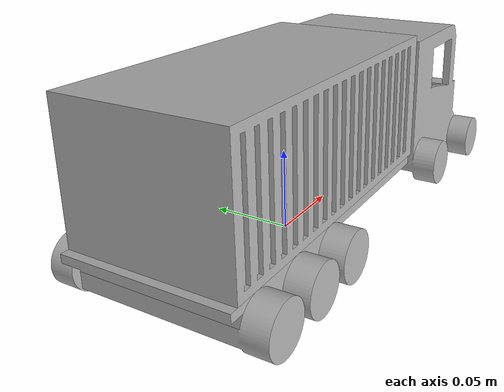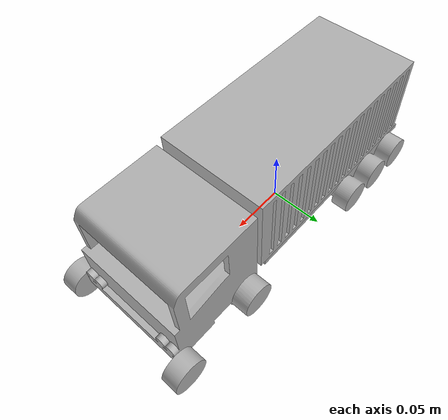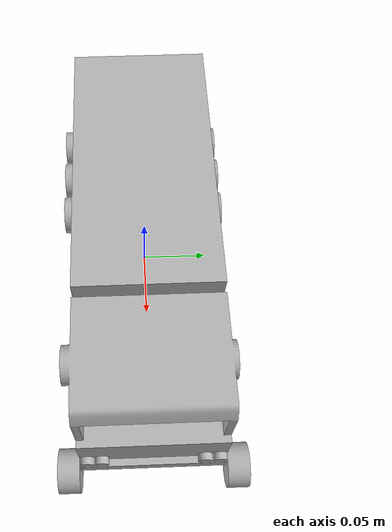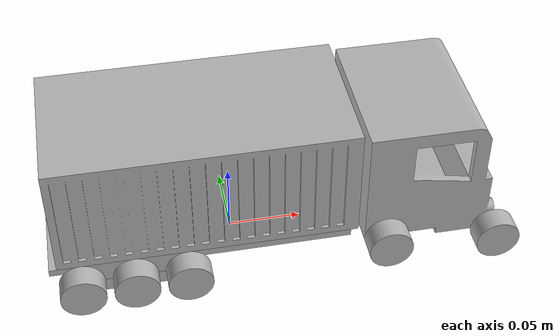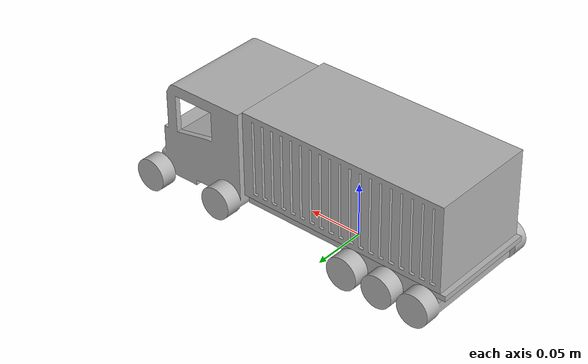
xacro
<?xml version="1.0" ?>
<robot name="container_car" xmlns:xacro="http://www.ros.org/wiki/xacro">

<xacro:include filename="$(find container_car_description)/urdf/materials.xacro" />
<xacro:include filename="$(find container_car_description)/urdf/container_car.trans" />
<xacro:include filename="$(find container_car_description)/urdf/container_car.gazebo" />
<link name="base_link">
  <inertial>
    <origin xyz="0.05908155549740775 -4.029122666512787e-10 0.04004034121485782" rpy="0 0 0"/>
    <mass value="3.868389315645549"/>
    <inertia ixx="0.006846" iyy="0.034945" izz="0.036193" ixy="0.0" iyz="0.0" ixz="-0.003702"/>
  </inertial>
  <visual>
    <origin xyz="0 0 0" rpy="0 0 0"/>
    <geometry>
      <mesh filename="package://container_car_description/meshes/base_link.stl" scale="0.001 0.001 0.001"/>
    </geometry>
    <material name="silver"/>
  </visual>
  <collision>
    <origin xyz="0 0 0" rpy="0 0 0"/>
    <geometry>
      <mesh filename="package://container_car_description/meshes/base_link.stl" scale="0.001 0.001 0.001"/>
    </geometry>
  </collision>
</link>

<link name="container_1">
  <inertial>
    <origin xyz="5.305650809107193e-05 0.0 0.04000000000000001" rpy="0 0 0"/>
    <mass value="12.298987499999999"/>
    <inertia ixx="0.016438" iyy="0.047674" izz="0.050928" ixy="0.0" iyz="0.0" ixz="-0.0"/>
  </inertial>
  <visual>
    <origin xyz="0.02 -0.0 -0.03" rpy="0 0 0"/>
    <geometry>
      <mesh filename="package://container_car_description/meshes/container_1.stl" scale="0.001 0.001 0.001"/>
    </geometry>
    <material name="silver"/>
  </visual>
  <collision>
    <origin xyz="0.02 -0.0 -0.03" rpy="0 0 0"/>
    <geometry>
      <mesh filename="package://container_car_description/meshes/container_1.stl" scale="0.001 0.001 0.001"/>
    </geometry>
  </collision>
</link>

<link name="wheel_1">
  <inertial>
    <origin xyz="0.0010701514169682014 0.0 -0.0028596948030623487" rpy="0 0 0"/>
    <mass value="1.1666454221962672"/>
    <inertia ixx="0.002257" iyy="0.00088" izz="0.003056" ixy="-0.0" iyz="0.0" ixz="-4e-06"/>
  </inertial>
  <visual>
    <origin xyz="0.0725 -0.0 -0.015" rpy="0 0 0"/>
    <geometry>
      <mesh filename="package://container_car_description/meshes/wheel_1.stl" scale="0.001 0.001 0.001"/>
    </geometry>
    <material name="silver"/>
  </visual>
  <collision>
    <origin xyz="0.0725 -0.0 -0.015" rpy="0 0 0"/>
    <geometry>
      <mesh filename="package://container_car_description/meshes/wheel_1.stl" scale="0.001 0.001 0.001"/>
    </geometry>
  </collision>
</link>

<link name="left_wheel_1">
  <inertial>
    <origin xyz="5.551115123125783e-17 0.007499999999999986 -3.469446951953614e-18" rpy="0 0 0"/>
    <mass value="0.08323257036604456"/>
    <inertia ixx="6e-06" iyy="9e-06" izz="6e-06" ixy="-0.0" iyz="0.0" ixz="-0.0"/>
  </inertial>
  <visual>
    <origin xyz="-0.175 -0.05 -0.015" rpy="0 0 0"/>
    <geometry>
      <mesh filename="package://container_car_description/meshes/left_wheel_1.stl" scale="0.001 0.001 0.001"/>
    </geometry>
    <material name="silver"/>
  </visual>
  <collision>
    <origin xyz="-0.175 -0.05 -0.015" rpy="0 0 0"/>
    <geometry>
      <mesh filename="package://container_car_description/meshes/left_wheel_1.stl" scale="0.001 0.001 0.001"/>
    </geometry>
  </collision>
</link>

<link name="right_wheel_1">
  <inertial>
    <origin xyz="5.551115123125783e-17 -0.007500000000000007 5.204170427930421e-18" rpy="0 0 0"/>
    <mass value="0.08323257036604456"/>
    <inertia ixx="6e-06" iyy="9e-06" izz="6e-06" ixy="-0.0" iyz="-0.0" ixz="0.0"/>
  </inertial>
  <visual>
    <origin xyz="-0.175 0.05 -0.015" rpy="0 0 0"/>
    <geometry>
      <mesh filename="package://container_car_description/meshes/right_wheel_1.stl" scale="0.001 0.001 0.001"/>
    </geometry>
    <material name="silver"/>
  </visual>
  <collision>
    <origin xyz="-0.175 0.05 -0.015" rpy="0 0 0"/>
    <geometry>
      <mesh filename="package://container_car_description/meshes/right_wheel_1.stl" scale="0.001 0.001 0.001"/>
    </geometry>
  </collision>
</link>

<joint name="Rigid 12" type="fixed">
  <origin xyz="-0.02 0.0 0.03" rpy="0 0 0"/>
  <parent link="base_link"/>
  <child link="container_1"/>
</joint>

<joint name="Rigid 13" type="fixed">
  <origin xyz="-0.0725 0.0 0.015" rpy="0 0 0"/>
  <parent link="base_link"/>
  <child link="wheel_1"/>
</joint>

<joint name="Revolute 14" type="continuous">
  <origin xyz="0.175 0.05 0.015" rpy="0 0 0"/>
  <parent link="base_link"/>
  <child link="left_wheel_1"/>
  <axis xyz="0.0 1.0 0.0"/>
</joint>

<joint name="Revolute 15" type="continuous">
  <origin xyz="0.175 -0.05 0.015" rpy="0 0 0"/>
  <parent link="base_link"/>
  <child link="right_wheel_1"/>
  <axis xyz="0.0 1.0 0.0"/>
</joint>

</robot>

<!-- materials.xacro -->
<robot name="container_car" xmlns:xacro="http://www.ros.org/wiki/xacro" >

<material name="silver">
  <color rgba="0.700 0.700 0.700 1.000"/>
</material>

</robot>

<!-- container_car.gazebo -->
<robot name="container_car" xmlns:xacro="http://www.ros.org/wiki/xacro" >

<xacro:property name="body_color" value="Gazebo/Silver" />

<gazebo>
  <plugin name="control" filename="libgazebo_ros_control.so"/>
</gazebo>
<gazebo reference="base_link">
  <material>${body_color}</material>
  <mu1>0.1</mu1>
  <mu2>0.1</mu2>
  <selfCollide>true</selfCollide>
  <gravity>true</gravity>
</gazebo>

<gazebo reference="right_wheel_1">
  <material>${body_color}</material>
  <mu1>3000</mu1>
  <mu2>3000</mu2>
  <selfCollide>true</selfCollide>
</gazebo>

<gazebo reference="left_wheel_1">
  <material>${body_color}</material>
  <mu1>3000</mu1>
  <mu2>3000</mu2>
  <selfCollide>true</selfCollide>
</gazebo>

<gazebo reference="container_1">
  <material>${body_color}</material>
  <mu1>0.2</mu1>
  <mu2>0.2</mu2>
  <selfCollide>true</selfCollide>
</gazebo>

<gazebo reference="wheel_1">
  <material>${body_color}</material>
  <mu1>0.2</mu1>
  <mu2>0.2</mu2>
  <selfCollide>true</selfCollide>
</gazebo>

<gazebo>
  <plugin name="differential_drive_controller" filename="libgazebo_ros_diff_drive.so">

    <!-- Plugin update rate in Hz -->
    <updateRate>120</updateRate>

    <!-- Name of left joint, defaults to `left_joint` -->
    <leftJoint>Revolute 14</leftJoint>

    <!-- Name of right joint, defaults to `right_joint` -->
    <rightJoint>Revolute 15</rightJoint>

    <!-- The distance from the center of one wheel to the other, in meters, defaults to 0.34 m -->
    <wheelSeparation>0.1</wheelSeparation>

    <!-- Diameter of the wheels, in meters, defaults to 0.15 m -->
    <wheelDiameter>0.03</wheelDiameter>

    <!-- Wheel acceleration, in rad/s^2, defaults to 0.0 rad/s^2 -->
    <wheelAcceleration>1.0</wheelAcceleration>

    <!-- Maximum torque which the wheels can produce, in Nm, defaults to 5 Nm -->
    <wheelTorque>200</wheelTorque>

    <!-- Topic to receive geometry_msgs/Twist message commands, defaults to `cmd_vel` -->
    <commandTopic>cmd_vel</commandTopic>

    <!-- Topic to publish nav_msgs/Odometry messages, defaults to `odom` -->
    <odometryTopic>odom</odometryTopic>

    <!-- Odometry frame, defaults to `odom` -->
    <odometryFrame>odom</odometryFrame>

    <!-- Robot frame to calculate odometry from, defaults to `base_footprint` -->
    <robotBaseFrame>base_link</robotBaseFrame>

    <!-- Odometry source, 0 for ENCODER, 1 for WORLD, defaults to WORLD -->
    <odometrySource>1</odometrySource>

    <!-- Set to true to publish transforms for the wheel links, defaults to false -->
    <publishWheelTF>true</publishWheelTF>

    <!-- Set to true to publish transforms for the odometry, defaults to true -->
    <publishOdom>true</publishOdom>

    <!-- Set to true to publish sensor_msgs/JointState on /joint_states for the wheel joints, defaults to false -->
    <publishWheelJointState>true</publishWheelJointState>

    <!-- Set to true to swap right and left wheels, defaults to true -->
    <legacyMode>false</legacyMode>
  </plugin>
</gazebo>

</robot>
